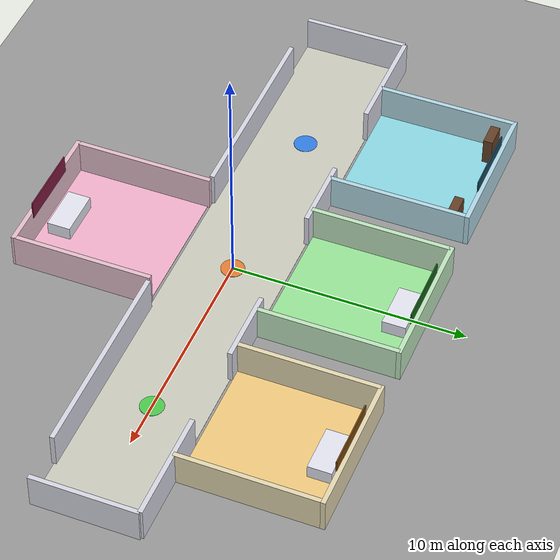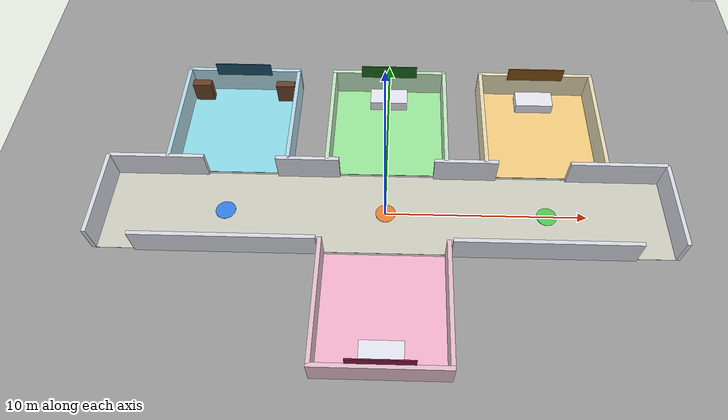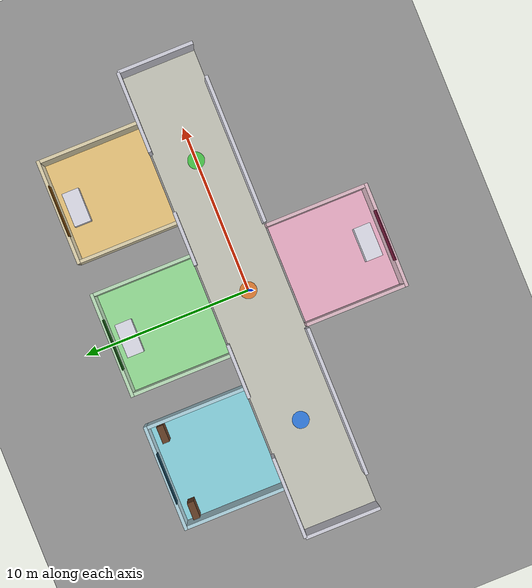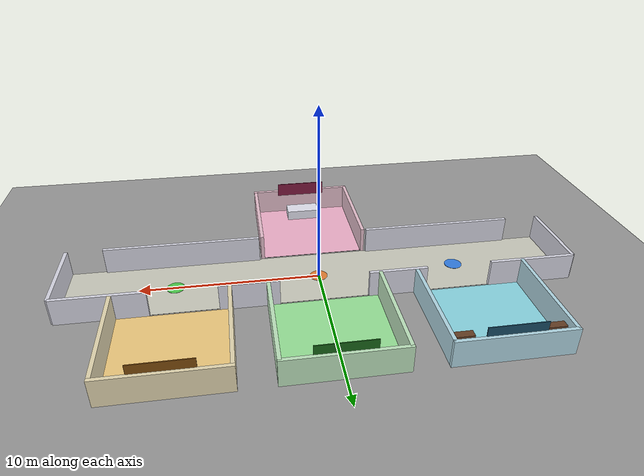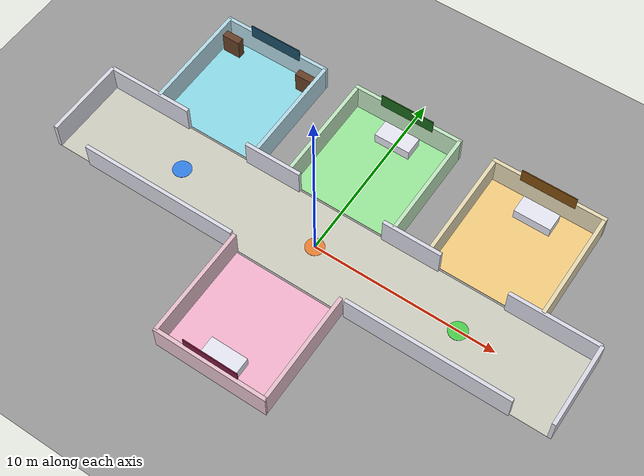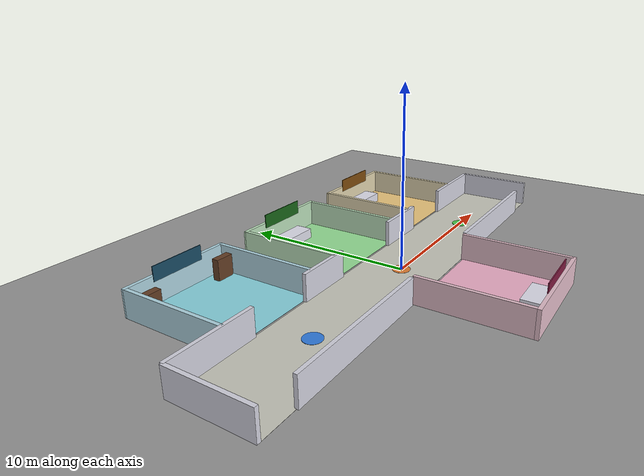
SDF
<?xml version="1.0" ?>
<sdf version="1.9">
  <world name="hospital_ward">

    <physics name="1ms" type="ode">
      <max_step_size>0.001</max_step_size>
      <real_time_factor>1.0</real_time_factor>
    </physics>

    <plugin filename="gz-sim-physics-system" name="gz::sim::systems::Physics"></plugin>
    <plugin filename="gz-sim-user-commands-system" name="gz::sim::systems::UserCommands"></plugin>
    <plugin filename="gz-sim-scene-broadcaster-system" name="gz::sim::systems::SceneBroadcaster"></plugin>
    <plugin filename="gz-sim-contact-system" name="gz::sim::systems::Contact"></plugin>
    <plugin filename="gz-sim-sensors-system" name="gz::sim::systems::Sensors">
      <render_engine>ogre2</render_engine>
    </plugin>

    <light type="directional" name="sun">
      <cast_shadows>true</cast_shadows>
      <pose>0 0 10 0 0 0</pose>
      <diffuse>0.8 0.8 0.8 1</diffuse>
      <specular>0.2 0.2 0.2 1</specular>
      <direction>-0.5 0.1 -0.9</direction>
    </light>

    <model name="ground_plane">
      <static>true</static>
      <link name="link">
        <collision name="collision">
          <geometry><plane><normal>0 0 1</normal><size>60 40</size></plane></geometry>
        </collision>
        <visual name="visual">
          <geometry><plane><normal>0 0 1</normal><size>60 40</size></plane></geometry>
          <material>
            <ambient>0.6 0.6 0.6 1</ambient>
            <diffuse>0.6 0.6 0.6 1</diffuse>
          </material>
        </visual>
      </link>
    </model>

    <!-- FLOOR COLOR PLATES -->
    <model name="floor_pharmacy">
      <static>true</static>
      <pose>-8 5.25 0.01 0 0 0</pose>
      <link name="link">
        <visual name="visual">
          <geometry><box><size>5.8 5.8 0.02</size></box></geometry>
          <material><ambient>0.55 0.85 0.9 1</ambient><diffuse>0.55 0.85 0.9 1</diffuse></material>
        </visual>
      </link>
    </model>
    <model name="floor_pr1">
      <static>true</static>
      <pose>0 5.25 0.01 0 0 0</pose>
      <link name="link">
        <visual name="visual">
          <geometry><box><size>5.8 5.8 0.02</size></box></geometry>
          <material><ambient>0.6 0.9 0.6 1</ambient><diffuse>0.6 0.9 0.6 1</diffuse></material>
        </visual>
      </link>
    </model>
    <model name="floor_pr2">
      <static>true</static>
      <pose>8 5.25 0.01 0 0 0</pose>
      <link name="link">
        <visual name="visual">
          <geometry><box><size>5.8 5.8 0.02</size></box></geometry>
          <material><ambient>0.95 0.8 0.5 1</ambient><diffuse>0.95 0.8 0.5 1</diffuse></material>
        </visual>
      </link>
    </model>
    <model name="floor_pr3">
      <static>true</static>
      <pose>0 -5.25 0.01 0 0 0</pose>
      <link name="link">
        <visual name="visual">
          <geometry><box><size>5.8 5.8 0.02</size></box></geometry>
          <material><ambient>0.95 0.7 0.8 1</ambient><diffuse>0.95 0.7 0.8 1</diffuse></material>
        </visual>
      </link>
    </model>
    <model name="floor_hallway">
      <static>true</static>
      <pose>0 0 0.005 0 0 0</pose>
      <link name="link">
        <visual name="visual">
          <geometry><box><size>28 4.5 0.01</size></box></geometry>
          <material><ambient>0.8 0.8 0.75 1</ambient><diffuse>0.8 0.8 0.75 1</diffuse></material>
        </visual>
      </link>
    </model>

    <!-- ROOM ID SIGNS (solid colored plates - boxes, not text) -->
    <model name="sign_pharmacy">
      <static>true</static>
      <pose>-8 8.15 1.6 1.5708 0 0</pose>
      <link name="link">
        <visual name="visual">
          <geometry><box><size>3.0 0.8 0.05</size></box></geometry>
          <material><ambient>0.1 0.3 0.4 1</ambient><diffuse>0.1 0.3 0.4 1</diffuse></material>
        </visual>
      </link>
    </model>
    <model name="sign_pr1">
      <static>true</static>
      <pose>0 8.15 1.6 1.5708 0 0</pose>
      <link name="link">
        <visual name="visual">
          <geometry><box><size>3.0 0.8 0.05</size></box></geometry>
          <material><ambient>0.1 0.4 0.1 1</ambient><diffuse>0.1 0.4 0.1 1</diffuse></material>
        </visual>
      </link>
    </model>
    <model name="sign_pr2">
      <static>true</static>
      <pose>8 8.15 1.6 1.5708 0 0</pose>
      <link name="link">
        <visual name="visual">
          <geometry><box><size>3.0 0.8 0.05</size></box></geometry>
          <material><ambient>0.5 0.3 0.05 1</ambient><diffuse>0.5 0.3 0.05 1</diffuse></material>
        </visual>
      </link>
    </model>
    <model name="sign_pr3">
      <static>true</static>
      <pose>0 -8.15 1.6 1.5708 0 0</pose>
      <link name="link">
        <visual name="visual">
          <geometry><box><size>3.0 0.8 0.05</size></box></geometry>
          <material><ambient>0.5 0.1 0.25 1</ambient><diffuse>0.5 0.1 0.25 1</diffuse></material>
        </visual>
      </link>
    </model>

    <!-- FURNITURE -->
    <model name="pharmacy_shelf1">
      <static>true</static>
      <pose>-10.3 7.5 0.6 0 0 0</pose>
      <link name="link">
        <collision name="collision"><geometry><box><size>1.0 0.4 1.2</size></box></geometry></collision>
        <visual name="visual"><geometry><box><size>1.0 0.4 1.2</size></box></geometry>
          <material><ambient>0.4 0.25 0.15 1</ambient><diffuse>0.4 0.25 0.15 1</diffuse></material>
        </visual>
      </link>
    </model>
    <model name="pharmacy_shelf2">
      <static>true</static>
      <pose>-5.7 7.5 0.6 0 0 0</pose>
      <link name="link">
        <collision name="collision"><geometry><box><size>1.0 0.4 1.2</size></box></geometry></collision>
        <visual name="visual"><geometry><box><size>1.0 0.4 1.2</size></box></geometry>
          <material><ambient>0.4 0.25 0.15 1</ambient><diffuse>0.4 0.25 0.15 1</diffuse></material>
        </visual>
      </link>
    </model>
    <model name="pr1_bed">
      <static>true</static>
      <pose>0 7.3 0.3 0 0 0</pose>
      <link name="link">
        <collision name="collision"><geometry><box><size>2.0 1.0 0.6</size></box></geometry></collision>
        <visual name="visual"><geometry><box><size>2.0 1.0 0.6</size></box></geometry>
          <material><ambient>0.9 0.9 0.95 1</ambient><diffuse>0.9 0.9 0.95 1</diffuse></material>
        </visual>
      </link>
    </model>
    <model name="pr2_bed">
      <static>true</static>
      <pose>8 7.3 0.3 0 0 0</pose>
      <link name="link">
        <collision name="collision"><geometry><box><size>2.0 1.0 0.6</size></box></geometry></collision>
        <visual name="visual"><geometry><box><size>2.0 1.0 0.6</size></box></geometry>
          <material><ambient>0.9 0.9 0.95 1</ambient><diffuse>0.9 0.9 0.95 1</diffuse></material>
        </visual>
      </link>
    </model>
    <model name="pr3_bed">
      <static>true</static>
      <pose>0 -7.3 0.3 0 0 0</pose>
      <link name="link">
        <collision name="collision"><geometry><box><size>2.0 1.0 0.6</size></box></geometry></collision>
        <visual name="visual"><geometry><box><size>2.0 1.0 0.6</size></box></geometry>
          <material><ambient>0.9 0.9 0.95 1</ambient><diffuse>0.9 0.9 0.95 1</diffuse></material>
        </visual>
      </link>
    </model>

    <!-- ROBOT HOME / CHARGING BAYS - now aligned under each robot's own doorway -->
    <model name="home_robot1">
      <static>true</static>
      <pose>-8 0 0.015 0 0 0</pose>
      <link name="link">
        <visual name="visual">
          <geometry><cylinder><radius>0.5</radius><length>0.02</length></cylinder></geometry>
          <material><ambient>0.2 0.5 0.9 1</ambient><diffuse>0.2 0.5 0.9 1</diffuse></material>
        </visual>
      </link>
    </model>
    <model name="home_robot2">
      <static>true</static>
      <pose>0 0 0.015 0 0 0</pose>
      <link name="link">
        <visual name="visual">
          <geometry><cylinder><radius>0.5</radius><length>0.02</length></cylinder></geometry>
          <material><ambient>0.9 0.5 0.2 1</ambient><diffuse>0.9 0.5 0.2 1</diffuse></material>
        </visual>
      </link>
    </model>
    <model name="home_robot3">
      <static>true</static>
      <pose>8 0 0.015 0 0 0</pose>
      <link name="link">
        <visual name="visual">
          <geometry><cylinder><radius>0.5</radius><length>0.02</length></cylinder></geometry>
          <material><ambient>0.3 0.8 0.3 1</ambient><diffuse>0.3 0.8 0.3 1</diffuse></material>
        </visual>
      </link>
    </model>

    <!-- WALLS -->
    <model name="wall_hallway_north_seg1">
      <static>true</static>
      <pose>-11.6 2.25 0.75 0 0 0</pose>
      <link name="link">
        <collision name="collision"><geometry><box><size>4.8 0.2 1.5</size></box></geometry></collision>
        <visual name="visual"><geometry><box><size>4.8 0.2 1.5</size></box></geometry>
          <material><ambient>0.85 0.85 0.9 1</ambient><diffuse>0.85 0.85 0.9 1</diffuse></material>
        </visual>
      </link>
    </model>
    <model name="wall_hallway_north_seg2">
      <static>true</static>
      <pose>-4 2.25 0.75 0 0 0</pose>
      <link name="link">
        <collision name="collision"><geometry><box><size>3.2 0.2 1.5</size></box></geometry></collision>
        <visual name="visual"><geometry><box><size>3.2 0.2 1.5</size></box></geometry>
          <material><ambient>0.85 0.85 0.9 1</ambient><diffuse>0.85 0.85 0.9 1</diffuse></material>
        </visual>
      </link>
    </model>
    <model name="wall_hallway_north_seg3">
      <static>true</static>
      <pose>4 2.25 0.75 0 0 0</pose>
      <link name="link">
        <collision name="collision"><geometry><box><size>3.2 0.2 1.5</size></box></geometry></collision>
        <visual name="visual"><geometry><box><size>3.2 0.2 1.5</size></box></geometry>
          <material><ambient>0.85 0.85 0.9 1</ambient><diffuse>0.85 0.85 0.9 1</diffuse></material>
        </visual>
      </link>
    </model>
    <model name="wall_hallway_north_seg4">
      <static>true</static>
      <pose>11.6 2.25 0.75 0 0 0</pose>
      <link name="link">
        <collision name="collision"><geometry><box><size>4.8 0.2 1.5</size></box></geometry></collision>
        <visual name="visual"><geometry><box><size>4.8 0.2 1.5</size></box></geometry>
          <material><ambient>0.85 0.85 0.9 1</ambient><diffuse>0.85 0.85 0.9 1</diffuse></material>
        </visual>
      </link>
    </model>

    <model name="wall_hallway_south_seg1">
      <static>true</static>
      <pose>-7.6 -2.25 0.75 0 0 0</pose>
      <link name="link">
        <collision name="collision"><geometry><box><size>8.8 0.2 1.5</size></box></geometry></collision>
        <visual name="visual"><geometry><box><size>8.8 0.2 1.5</size></box></geometry>
          <material><ambient>0.85 0.85 0.9 1</ambient><diffuse>0.85 0.85 0.9 1</diffuse></material>
        </visual>
      </link>
    </model>
    <model name="wall_hallway_south_seg2">
      <static>true</static>
      <pose>7.6 -2.25 0.75 0 0 0</pose>
      <link name="link">
        <collision name="collision"><geometry><box><size>8.8 0.2 1.5</size></box></geometry></collision>
        <visual name="visual"><geometry><box><size>8.8 0.2 1.5</size></box></geometry>
          <material><ambient>0.85 0.85 0.9 1</ambient><diffuse>0.85 0.85 0.9 1</diffuse></material>
        </visual>
      </link>
    </model>

    <model name="wall_hallway_west_cap">
      <static>true</static>
      <pose>-14 0 0.75 0 0 1.5708</pose>
      <link name="link">
        <collision name="collision"><geometry><box><size>4.5 0.2 1.5</size></box></geometry></collision>
        <visual name="visual"><geometry><box><size>4.5 0.2 1.5</size></box></geometry>
          <material><ambient>0.85 0.85 0.9 1</ambient><diffuse>0.85 0.85 0.9 1</diffuse></material>
        </visual>
      </link>
    </model>
    <model name="wall_hallway_east_cap">
      <static>true</static>
      <pose>14 0 0.75 0 0 1.5708</pose>
      <link name="link">
        <collision name="collision"><geometry><box><size>4.5 0.2 1.5</size></box></geometry></collision>
        <visual name="visual"><geometry><box><size>4.5 0.2 1.5</size></box></geometry>
          <material><ambient>0.85 0.85 0.9 1</ambient><diffuse>0.85 0.85 0.9 1</diffuse></material>
        </visual>
      </link>
    </model>

    <model name="wall_pharmacy_north"><static>true</static><pose>-8 8.25 0.75 0 0 0</pose>
      <link name="link"><collision name="collision"><geometry><box><size>6.2 0.2 1.5</size></box></geometry></collision>
      <visual name="visual"><geometry><box><size>6.2 0.2 1.5</size></box></geometry><material><ambient>0.7 0.85 0.9 1</ambient><diffuse>0.7 0.85 0.9 1</diffuse></material></visual></link>
    </model>
    <model name="wall_pharmacy_west"><static>true</static><pose>-11 5.25 0.75 0 0 1.5708</pose>
      <link name="link"><collision name="collision"><geometry><box><size>6.0 0.2 1.5</size></box></geometry></collision>
      <visual name="visual"><geometry><box><size>6.0 0.2 1.5</size></box></geometry><material><ambient>0.7 0.85 0.9 1</ambient><diffuse>0.7 0.85 0.9 1</diffuse></material></visual></link>
    </model>
    <model name="wall_pharmacy_east"><static>true</static><pose>-5 5.25 0.75 0 0 1.5708</pose>
      <link name="link"><collision name="collision"><geometry><box><size>6.0 0.2 1.5</size></box></geometry></collision>
      <visual name="visual"><geometry><box><size>6.0 0.2 1.5</size></box></geometry><material><ambient>0.7 0.85 0.9 1</ambient><diffuse>0.7 0.85 0.9 1</diffuse></material></visual></link>
    </model>

    <model name="wall_pr1_north"><static>true</static><pose>0 8.25 0.75 0 0 0</pose>
      <link name="link"><collision name="collision"><geometry><box><size>6.2 0.2 1.5</size></box></geometry></collision>
      <visual name="visual"><geometry><box><size>6.2 0.2 1.5</size></box></geometry><material><ambient>0.75 0.9 0.75 1</ambient><diffuse>0.75 0.9 0.75 1</diffuse></material></visual></link>
    </model>
    <model name="wall_pr1_west"><static>true</static><pose>-3 5.25 0.75 0 0 1.5708</pose>
      <link name="link"><collision name="collision"><geometry><box><size>6.0 0.2 1.5</size></box></geometry></collision>
      <visual name="visual"><geometry><box><size>6.0 0.2 1.5</size></box></geometry><material><ambient>0.75 0.9 0.75 1</ambient><diffuse>0.75 0.9 0.75 1</diffuse></material></visual></link>
    </model>
    <model name="wall_pr1_east"><static>true</static><pose>3 5.25 0.75 0 0 1.5708</pose>
      <link name="link"><collision name="collision"><geometry><box><size>6.0 0.2 1.5</size></box></geometry></collision>
      <visual name="visual"><geometry><box><size>6.0 0.2 1.5</size></box></geometry><material><ambient>0.75 0.9 0.75 1</ambient><diffuse>0.75 0.9 0.75 1</diffuse></material></visual></link>
    </model>

    <model name="wall_pr2_north"><static>true</static><pose>8 8.25 0.75 0 0 0</pose>
      <link name="link"><collision name="collision"><geometry><box><size>6.2 0.2 1.5</size></box></geometry></collision>
      <visual name="visual"><geometry><box><size>6.2 0.2 1.5</size></box></geometry><material><ambient>0.9 0.85 0.7 1</ambient><diffuse>0.9 0.85 0.7 1</diffuse></material></visual></link>
    </model>
    <model name="wall_pr2_west"><static>true</static><pose>5 5.25 0.75 0 0 1.5708</pose>
      <link name="link"><collision name="collision"><geometry><box><size>6.0 0.2 1.5</size></box></geometry></collision>
      <visual name="visual"><geometry><box><size>6.0 0.2 1.5</size></box></geometry><material><ambient>0.9 0.85 0.7 1</ambient><diffuse>0.9 0.85 0.7 1</diffuse></material></visual></link>
    </model>
    <model name="wall_pr2_east"><static>true</static><pose>11 5.25 0.75 0 0 1.5708</pose>
      <link name="link"><collision name="collision"><geometry><box><size>6.0 0.2 1.5</size></box></geometry></collision>
      <visual name="visual"><geometry><box><size>6.0 0.2 1.5</size></box></geometry><material><ambient>0.9 0.85 0.7 1</ambient><diffuse>0.9 0.85 0.7 1</diffuse></material></visual></link>
    </model>

    <model name="wall_pr3_south"><static>true</static><pose>0 -8.25 0.75 0 0 0</pose>
      <link name="link"><collision name="collision"><geometry><box><size>6.2 0.2 1.5</size></box></geometry></collision>
      <visual name="visual"><geometry><box><size>6.2 0.2 1.5</size></box></geometry><material><ambient>0.9 0.75 0.8 1</ambient><diffuse>0.9 0.75 0.8 1</diffuse></material></visual></link>
    </model>
    <model name="wall_pr3_west"><static>true</static><pose>-3 -5.25 0.75 0 0 1.5708</pose>
      <link name="link"><collision name="collision"><geometry><box><size>6.0 0.2 1.5</size></box></geometry></collision>
      <visual name="visual"><geometry><box><size>6.0 0.2 1.5</size></box></geometry><material><ambient>0.9 0.75 0.8 1</ambient><diffuse>0.9 0.75 0.8 1</diffuse></material></visual></link>
    </model>
    <model name="wall_pr3_east"><static>true</static><pose>3 -5.25 0.75 0 0 1.5708</pose>
      <link name="link"><collision name="collision"><geometry><box><size>6.0 0.2 1.5</size></box></geometry></collision>
      <visual name="visual"><geometry><box><size>6.0 0.2 1.5</size></box></geometry><material><ambient>0.9 0.75 0.8 1</ambient><diffuse>0.9 0.75 0.8 1</diffuse></material></visual></link>
    </model>

  </world>
</sdf>
